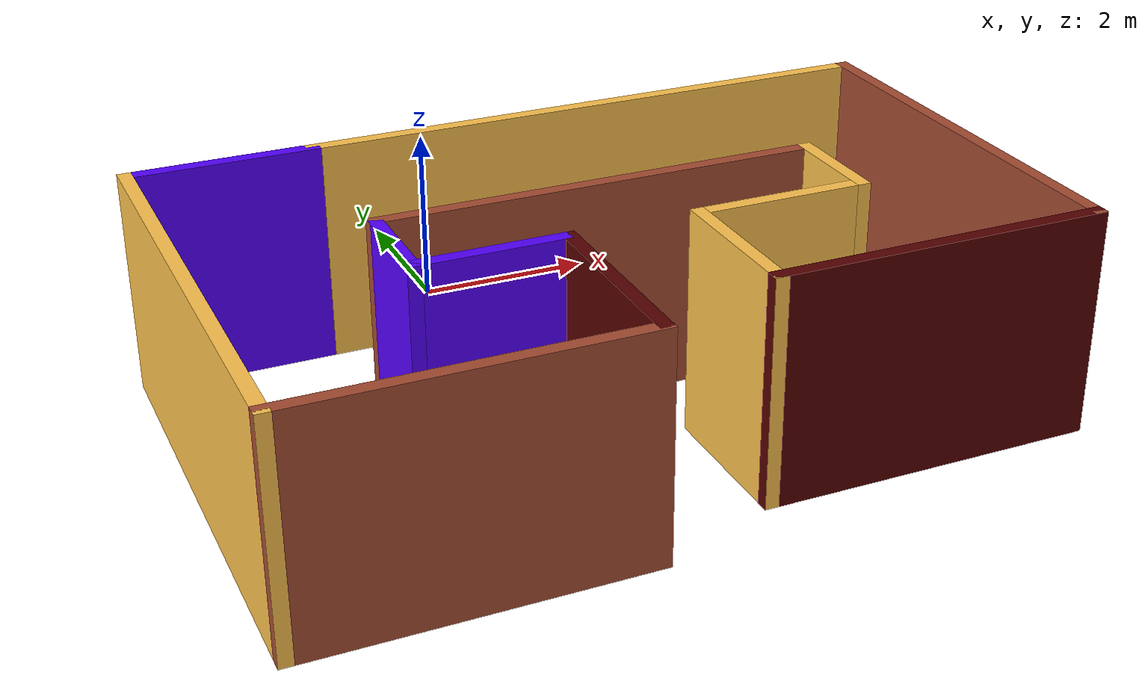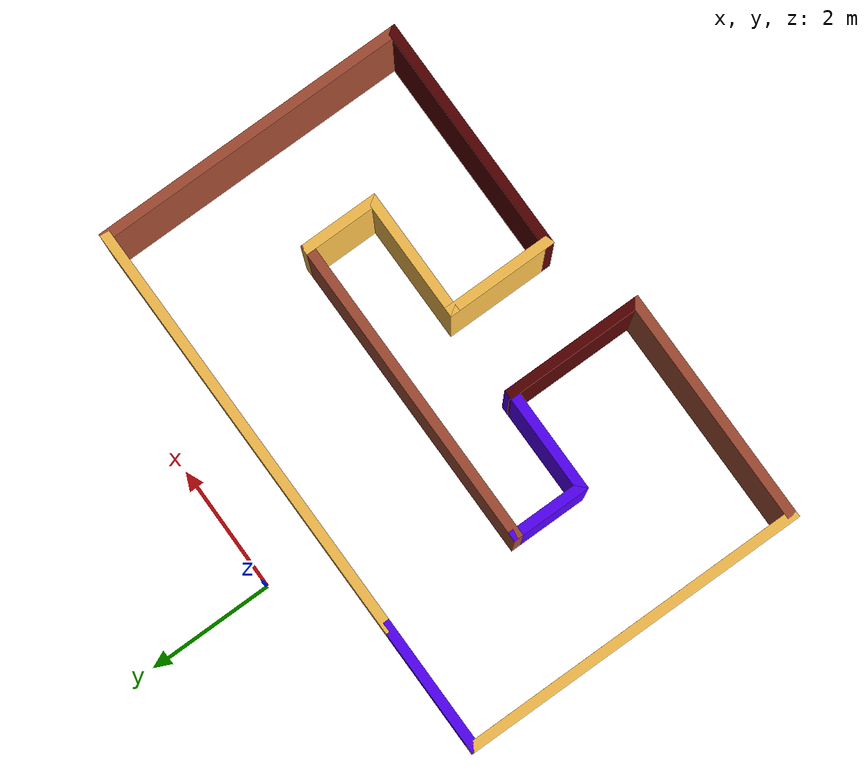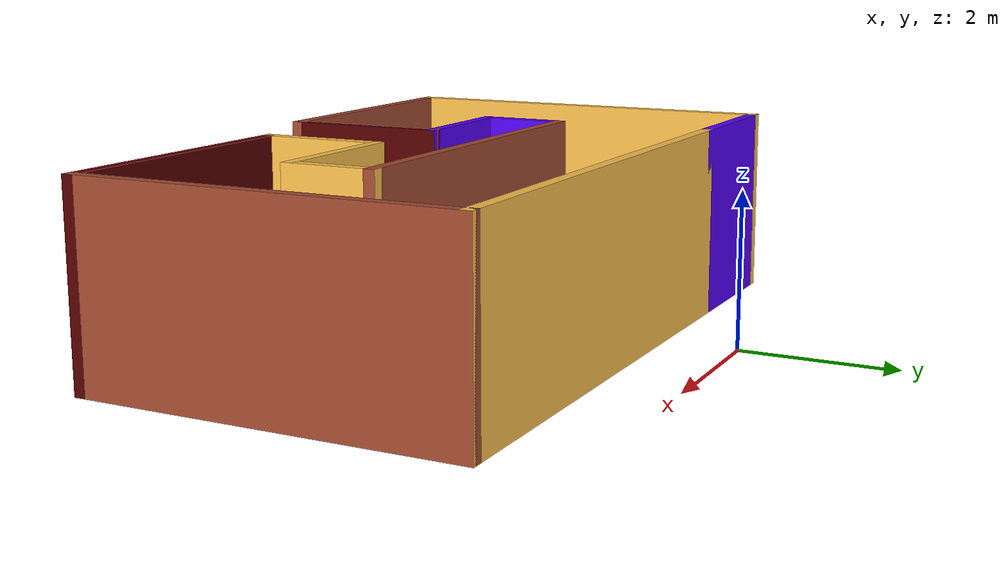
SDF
<?xml version='1.0'?>
<sdf version='1.6'>
  <model name='WeirdWorld'>
    <pose frame=''>0.74 -3.705 0 0 -0 0</pose>
    <link name='Wall_0'>
      <collision name='Wall_0_Collision'>
        <geometry>
          <box>
            <size>6.75 0.15 2.5</size>
          </box>
        </geometry>
        <pose frame=''>0 0 1.25 0 -0 0</pose>
      </collision>
      <visual name='Wall_0_Visual'>
        <pose frame=''>0 0 1.25 0 -0 0</pose>
        <geometry>
          <box>
            <size>6.75 0.15 2.5</size>
          </box>
        </geometry>
        <material>
          <script>
            <uri>file://media/materials/scripts/gazebo.material</uri>
            <name>Gazebo/Grey</name>
          </script>
          <ambient>1 0.764706 0.305882 1</ambient>
        </material>
        <meta>
          <layer>0</layer>
        </meta>
      </visual>
      <pose frame=''>1 2.675 0 0 -0 0</pose>
    </link>
    <link name='Wall_1'>
      <collision name='Wall_1_Collision'>
        <geometry>
          <box>
            <size>5 0.15 2.5</size>
          </box>
        </geometry>
        <pose frame=''>0 0 1.25 0 -0 0</pose>
      </collision>
      <visual name='Wall_1_Visual'>
        <pose frame=''>0 0 1.25 0 -0 0</pose>
        <geometry>
          <box>
            <size>5 0.15 2.5</size>
          </box>
        </geometry>
        <material>
          <script>
            <uri>file://media/materials/scripts/gazebo.material</uri>
            <name>Gazebo/Bricks</name>
          </script>
          <ambient>1 1 1 1</ambient>
        </material>
        <meta>
          <layer>0</layer>
        </meta>
      </visual>
      <pose frame=''>4.3 0.25 0 0 0 -1.5708</pose>
    </link>
    <link name='Wall_10'>
      <collision name='Wall_10_Collision'>
        <geometry>
          <box>
            <size>3.75 0.15 2.5</size>
          </box>
        </geometry>
        <pose frame=''>0 0 1.25 0 -0 0</pose>
      </collision>
      <visual name='Wall_10_Visual'>
        <pose frame=''>0 0 1.25 0 -0 0</pose>
        <geometry>
          <box>
            <size>3.75 0.15 2.5</size>
          </box>
        </geometry>
        <material>
          <script>
            <uri>file://media/materials/scripts/gazebo.material</uri>
            <name>Gazebo/Bricks</name>
          </script>
          <ambient>1 1 1 1</ambient>
        </material>
        <meta>
          <layer>0</layer>
        </meta>
      </visual>
      <pose frame=''>-2.5 -2.675 0 0 -0 3.14159</pose>
    </link>
    <link name='Wall_11'>
      <collision name='Wall_11_Collision'>
        <geometry>
          <box>
            <size>5.5 0.15 2.5</size>
          </box>
        </geometry>
        <pose frame=''>0 0 1.25 0 -0 0</pose>
      </collision>
      <visual name='Wall_11_Visual'>
        <pose frame=''>0 0 1.25 0 -0 0</pose>
        <geometry>
          <box>
            <size>5.5 0.15 2.5</size>
          </box>
        </geometry>
        <material>
          <script>
            <uri>file://media/materials/scripts/gazebo.material</uri>
            <name>Gazebo/Grey</name>
          </script>
          <ambient>1 0.764706 0.305882 1</ambient>
        </material>
        <meta>
          <layer>0</layer>
        </meta>
      </visual>
      <pose frame=''>-4.3 0 0 0 -0 1.5708</pose>
    </link>
    <link name='Wall_13'>
      <collision name='Wall_13_Collision'>
        <geometry>
          <box>
            <size>2.15 0.15 2.5</size>
          </box>
        </geometry>
        <pose frame=''>0 0 1.25 0 -0 0</pose>
      </collision>
      <visual name='Wall_13_Visual'>
        <pose frame=''>0 0 1.25 0 -0 0</pose>
        <geometry>
          <box>
            <size>2.15 0.15 2.5</size>
          </box>
        </geometry>
        <material>
          <script>
            <uri>file://media/materials/scripts/gazebo.material</uri>
            <name>Gazebo/Grey</name>
          </script>
          <ambient>0.333333 0 1 1</ambient>
        </material>
        <meta>
          <layer>0</layer>
        </meta>
      </visual>
      <pose frame=''>-3.3 2.675 0 0 -0 0</pose>
    </link>
    <link name='Wall_2'>
      <collision name='Wall_2_Collision'>
        <geometry>
          <box>
            <size>3.75 0.15 2.5</size>
          </box>
        </geometry>
        <pose frame=''>0 0 1.25 0 -0 0</pose>
      </collision>
      <visual name='Wall_2_Visual'>
        <pose frame=''>0 0 1.25 0 -0 0</pose>
        <geometry>
          <box>
            <size>3.75 0.15 2.5</size>
          </box>
        </geometry>
        <material>
          <script>
            <uri>file://media/materials/scripts/gazebo.material</uri>
            <name>Gazebo/Grey</name>
          </script>
          <ambient>0.333333 0 0 1</ambient>
        </material>
        <meta>
          <layer>0</layer>
        </meta>
      </visual>
      <pose frame=''>2.5 -2.175 0 0 -0 3.14159</pose>
    </link>
    <link name='Wall_3'>
      <collision name='Wall_3_Collision'>
        <geometry>
          <box>
            <size>1.75 0.15 2.5</size>
          </box>
        </geometry>
        <pose frame=''>0 0 1.25 0 -0 0</pose>
      </collision>
      <visual name='Wall_3_Visual'>
        <pose frame=''>0 0 1.25 0 -0 0</pose>
        <geometry>
          <box>
            <size>1.75 0.15 2.5</size>
          </box>
        </geometry>
        <material>
          <script>
            <uri>file://media/materials/scripts/gazebo.material</uri>
            <name>Gazebo/Grey</name>
          </script>
          <ambient>1 0.764706 0.305882 1</ambient>
        </material>
        <meta>
          <layer>0</layer>
        </meta>
      </visual>
      <pose frame=''>0.7 -1.375 0 0 -0 1.5708</pose>
    </link>
    <link name='Wall_4'>
      <collision name='Wall_4_Collision'>
        <geometry>
          <box>
            <size>2 0.15 2.5</size>
          </box>
        </geometry>
        <pose frame=''>0 0 1.25 0 -0 0</pose>
      </collision>
      <visual name='Wall_4_Visual'>
        <pose frame=''>0 0 1.25 0 -0 0</pose>
        <geometry>
          <box>
            <size>2 0.15 2.5</size>
          </box>
        </geometry>
        <material>
          <script>
            <uri>file://media/materials/scripts/gazebo.material</uri>
            <name>Gazebo/Grey</name>
          </script>
          <ambient>1 0.764706 0.305882 1</ambient>
        </material>
        <meta>
          <layer>0</layer>
        </meta>
      </visual>
      <pose frame=''>1.625 -0.575 0 0 -0 0</pose>
    </link>
    <link name='Wall_5'>
      <collision name='Wall_5_Collision'>
        <geometry>
          <box>
            <size>1.25 0.15 2.5</size>
          </box>
        </geometry>
        <pose frame=''>0 0 1.25 0 -0 0</pose>
      </collision>
      <visual name='Wall_5_Visual'>
        <pose frame=''>0 0 1.25 0 -0 0</pose>
        <geometry>
          <box>
            <size>1.25 0.15 2.5</size>
          </box>
        </geometry>
        <material>
          <script>
            <uri>file://media/materials/scripts/gazebo.material</uri>
            <name>Gazebo/Grey</name>
          </script>
          <ambient>1 0.764706 0.305882 1</ambient>
        </material>
        <meta>
          <layer>0</layer>
        </meta>
      </visual>
      <pose frame=''>2.55 -0.025 0 0 -0 1.5708</pose>
    </link>
    <link name='Wall_6'>
      <collision name='Wall_6_Collision'>
        <geometry>
          <box>
            <size>5 0.15 2.5</size>
          </box>
        </geometry>
        <pose frame=''>0 0 1.25 0 -0 0</pose>
      </collision>
      <visual name='Wall_6_Visual'>
        <pose frame=''>0 0 1.25 0 -0 0</pose>
        <geometry>
          <box>
            <size>5 0.15 2.5</size>
          </box>
        </geometry>
        <material>
          <script>
            <uri>file://media/materials/scripts/gazebo.material</uri>
            <name>Gazebo/Bricks</name>
          </script>
          <ambient>1 1 1 1</ambient>
        </material>
        <meta>
          <layer>0</layer>
        </meta>
      </visual>
      <pose frame=''>0.125 0.525 0 0 -0 3.14159</pose>
    </link>
    <link name='Wall_7'>
      <collision name='Wall_7_Collision'>
        <geometry>
          <box>
            <size>1.25 0.15 2.5</size>
          </box>
        </geometry>
        <pose frame=''>0 0 1.25 0 -0 0</pose>
      </collision>
      <visual name='Wall_7_Visual'>
        <pose frame=''>0 0 1.25 0 -0 0</pose>
        <geometry>
          <box>
            <size>1.25 0.15 2.5</size>
          </box>
        </geometry>
        <material>
          <script>
            <uri>file://media/materials/scripts/gazebo.material</uri>
            <name>Gazebo/Grey</name>
          </script>
          <ambient>0.333333 0 1 1</ambient>
        </material>
        <meta>
          <layer>0</layer>
        </meta>
      </visual>
      <pose frame=''>-2.3 -0.025 0 0 0 -1.5708</pose>
    </link>
    <link name='Wall_8'>
      <collision name='Wall_8_Collision'>
        <geometry>
          <box>
            <size>1.75 0.15 2.5</size>
          </box>
        </geometry>
        <pose frame=''>0 0 1.25 0 -0 0</pose>
      </collision>
      <visual name='Wall_8_Visual'>
        <pose frame=''>0 0 1.25 0 -0 0</pose>
        <geometry>
          <box>
            <size>1.75 0.15 2.5</size>
          </box>
        </geometry>
        <material>
          <script>
            <uri>file://media/materials/scripts/gazebo.material</uri>
            <name>Gazebo/Grey</name>
          </script>
          <ambient>0.333333 0 1 1</ambient>
        </material>
        <meta>
          <layer>0</layer>
        </meta>
      </visual>
      <pose frame=''>-1.5 -0.575 0 0 -0 0</pose>
    </link>
    <link name='Wall_9'>
      <collision name='Wall_9_Collision'>
        <geometry>
          <box>
            <size>2.25 0.15 2.5</size>
          </box>
        </geometry>
        <pose frame=''>0 0 1.25 0 -0 0</pose>
      </collision>
      <visual name='Wall_9_Visual'>
        <pose frame=''>0 0 1.25 0 -0 0</pose>
        <geometry>
          <box>
            <size>2.25 0.15 2.5</size>
          </box>
        </geometry>
        <material>
          <script>
            <uri>file://media/materials/scripts/gazebo.material</uri>
            <name>Gazebo/Grey</name>
          </script>
          <ambient>0.333333 0 0 1</ambient>
        </material>
        <meta>
          <layer>0</layer>
        </meta>
      </visual>
      <pose frame=''>-0.7 -1.625 0 0 0 -1.5708</pose>
    </link>
    <static>1</static>
  </model>
</sdf>
